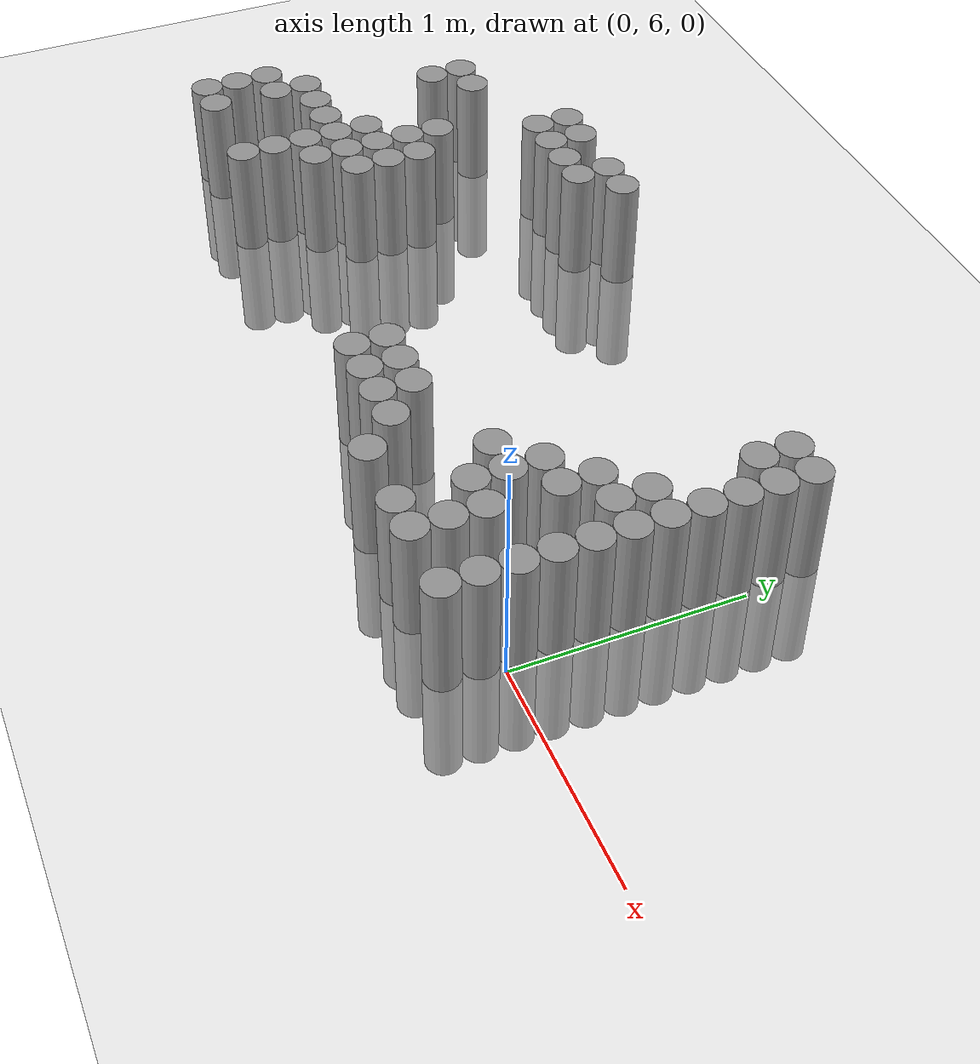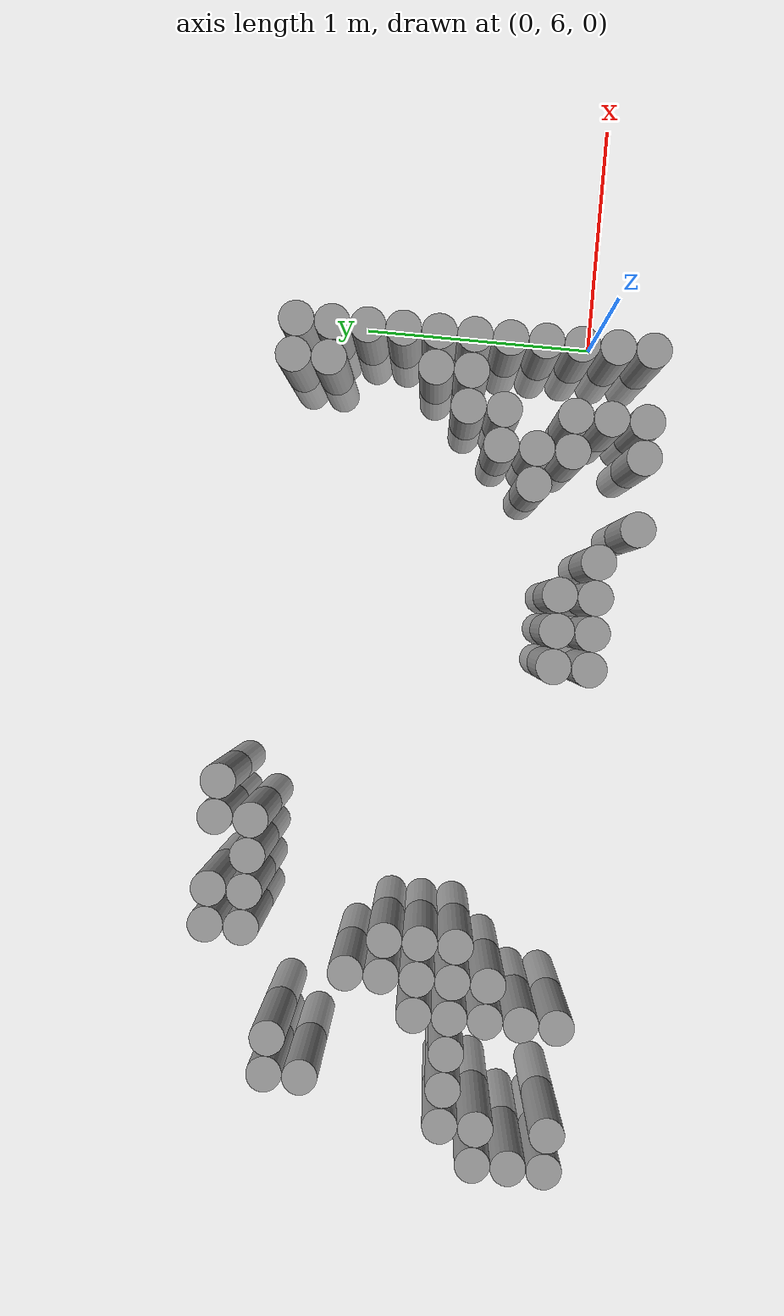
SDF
<sdf version="1.6">
 <world name="default">
  <model name="ground_plane">
   <static>1</static>
   <link name="link">
    <collision name="collision">
     <geometry><plane><normal>0 0 1</normal><size>100 100</size></plane></geometry>
     <surface><friction><ode><mu>100</mu><mu2>50</mu2></ode></friction></surface>
    </collision>
    <visual name="visual">
     <cast_shadows>0</cast_shadows>
     <geometry><plane><normal>0 0 1</normal><size>100 100</size></plane></geometry>
     <material>
      <script><uri>file://media/materials/scripts/gazebo.material</uri><name>Gazebo/Grey</name></script>
     </material>
    </visual>
   </link>
  </model>
  <model name="unit_cylinder_177">
   <pose>-3.525000 5.925000 0.000000 0.000000 0.000000 0.000000</pose>
   <link name="link">
    <inertial>
     <mass>1</mass>
     <inertia><ixx>0.145833</ixx><ixy>0</ixy><ixz>0</ixz><iyy>0.145833</iyy><iyz>0</iyz><izz>0.125</izz></inertia>
    </inertial>
    <collision name="collision">
     <geometry><cylinder><radius>0.075000</radius><length>1</length></cylinder></geometry>
    </collision>
    <visual name="visual">
     <geometry><cylinder><radius>0.075000</radius><length>1</length></cylinder></geometry>
     <material>
      <script><name>Gazebo/Grey</name><uri>file://media/materials/scripts/gazebo.material</uri></script>
     </material>
    </visual>
   </link>
  </model>
  <model name="unit_cylinder_178">
   <pose>-3.525000 6.075000 0.000000 0.000000 0.000000 0.000000</pose>
   <link name="link">
    <inertial>
     <mass>1</mass>
     <inertia><ixx>0.145833</ixx><ixy>0</ixy><ixz>0</ixz><iyy>0.145833</iyy><iyz>0</iyz><izz>0.125</izz></inertia>
    </inertial>
    <collision name="collision">
     <geometry><cylinder><radius>0.075000</radius><length>1</length></cylinder></geometry>
    </collision>
    <visual name="visual">
     <geometry><cylinder><radius>0.075000</radius><length>1</length></cylinder></geometry>
     <material>
      <script><name>Gazebo/Grey</name><uri>file://media/materials/scripts/gazebo.material</uri></script>
     </material>
    </visual>
   </link>
  </model>
  <model name="unit_cylinder_179">
   <pose>-3.525000 6.225000 0.000000 0.000000 0.000000 0.000000</pose>
   <link name="link">
    <inertial>
     <mass>1</mass>
     <inertia><ixx>0.145833</ixx><ixy>0</ixy><ixz>0</ixz><iyy>0.145833</iyy><iyz>0</iyz><izz>0.125</izz></inertia>
    </inertial>
    <collision name="collision">
     <geometry><cylinder><radius>0.075000</radius><length>1</length></cylinder></geometry>
    </collision>
    <visual name="visual">
     <geometry><cylinder><radius>0.075000</radius><length>1</length></cylinder></geometry>
     <material>
      <script><name>Gazebo/Grey</name><uri>file://media/materials/scripts/gazebo.material</uri></script>
     </material>
    </visual>
   </link>
  </model>
  <model name="unit_cylinder_183">
   <pose>-3.375000 5.925000 0.000000 0.000000 0.000000 0.000000</pose>
   <link name="link">
    <inertial>
     <mass>1</mass>
     <inertia><ixx>0.145833</ixx><ixy>0</ixy><ixz>0</ixz><iyy>0.145833</iyy><iyz>0</iyz><izz>0.125</izz></inertia>
    </inertial>
    <collision name="collision">
     <geometry><cylinder><radius>0.075000</radius><length>1</length></cylinder></geometry>
    </collision>
    <visual name="visual">
     <geometry><cylinder><radius>0.075000</radius><length>1</length></cylinder></geometry>
     <material>
      <script><name>Gazebo/Grey</name><uri>file://media/materials/scripts/gazebo.material</uri></script>
     </material>
    </visual>
   </link>
  </model>
  <model name="unit_cylinder_184">
   <pose>-3.375000 6.225000 0.000000 0.000000 0.000000 0.000000</pose>
   <link name="link">
    <inertial>
     <mass>1</mass>
     <inertia><ixx>0.145833</ixx><ixy>0</ixy><ixz>0</ixz><iyy>0.145833</iyy><iyz>0</iyz><izz>0.125</izz></inertia>
    </inertial>
    <collision name="collision">
     <geometry><cylinder><radius>0.075000</radius><length>1</length></cylinder></geometry>
    </collision>
    <visual name="visual">
     <geometry><cylinder><radius>0.075000</radius><length>1</length></cylinder></geometry>
     <material>
      <script><name>Gazebo/Grey</name><uri>file://media/materials/scripts/gazebo.material</uri></script>
     </material>
    </visual>
   </link>
  </model>
  <model name="unit_cylinder_185">
   <pose>-3.375000 6.375000 0.000000 0.000000 0.000000 0.000000</pose>
   <link name="link">
    <inertial>
     <mass>1</mass>
     <inertia><ixx>0.145833</ixx><ixy>0</ixy><ixz>0</ixz><iyy>0.145833</iyy><iyz>0</iyz><izz>0.125</izz></inertia>
    </inertial>
    <collision name="collision">
     <geometry><cylinder><radius>0.075000</radius><length>1</length></cylinder></geometry>
    </collision>
    <visual name="visual">
     <geometry><cylinder><radius>0.075000</radius><length>1</length></cylinder></geometry>
     <material>
      <script><name>Gazebo/Grey</name><uri>file://media/materials/scripts/gazebo.material</uri></script>
     </material>
    </visual>
   </link>
  </model>
  <model name="unit_cylinder_190">
   <pose>-3.225000 6.375000 0.000000 0.000000 0.000000 0.000000</pose>
   <link name="link">
    <inertial>
     <mass>1</mass>
     <inertia><ixx>0.145833</ixx><ixy>0</ixy><ixz>0</ixz><iyy>0.145833</iyy><iyz>0</iyz><izz>0.125</izz></inertia>
    </inertial>
    <collision name="collision">
     <geometry><cylinder><radius>0.075000</radius><length>1</length></cylinder></geometry>
    </collision>
    <visual name="visual">
     <geometry><cylinder><radius>0.075000</radius><length>1</length></cylinder></geometry>
     <material>
      <script><name>Gazebo/Grey</name><uri>file://media/materials/scripts/gazebo.material</uri></script>
     </material>
    </visual>
   </link>
  </model>
  <model name="unit_cylinder_191">
   <pose>-3.225000 6.975000 0.000000 0.000000 0.000000 0.000000</pose>
   <link name="link">
    <inertial>
     <mass>1</mass>
     <inertia><ixx>0.145833</ixx><ixy>0</ixy><ixz>0</ixz><iyy>0.145833</iyy><iyz>0</iyz><izz>0.125</izz></inertia>
    </inertial>
    <collision name="collision">
     <geometry><cylinder><radius>0.075000</radius><length>1</length></cylinder></geometry>
    </collision>
    <visual name="visual">
     <geometry><cylinder><radius>0.075000</radius><length>1</length></cylinder></geometry>
     <material>
      <script><name>Gazebo/Grey</name><uri>file://media/materials/scripts/gazebo.material</uri></script>
     </material>
    </visual>
   </link>
  </model>
  <model name="unit_cylinder_192">
   <pose>-3.225000 7.125000 0.000000 0.000000 0.000000 0.000000</pose>
   <link name="link">
    <inertial>
     <mass>1</mass>
     <inertia><ixx>0.145833</ixx><ixy>0</ixy><ixz>0</ixz><iyy>0.145833</iyy><iyz>0</iyz><izz>0.125</izz></inertia>
    </inertial>
    <collision name="collision">
     <geometry><cylinder><radius>0.075000</radius><length>1</length></cylinder></geometry>
    </collision>
    <visual name="visual">
     <geometry><cylinder><radius>0.075000</radius><length>1</length></cylinder></geometry>
     <material>
      <script><name>Gazebo/Grey</name><uri>file://media/materials/scripts/gazebo.material</uri></script>
     </material>
    </visual>
   </link>
  </model>
  <model name="unit_cylinder_195">
   <pose>-3.075000 6.375000 0.000000 0.000000 0.000000 0.000000</pose>
   <link name="link">
    <inertial>
     <mass>1</mass>
     <inertia><ixx>0.145833</ixx><ixy>0</ixy><ixz>0</ixz><iyy>0.145833</iyy><iyz>0</iyz><izz>0.125</izz></inertia>
    </inertial>
    <collision name="collision">
     <geometry><cylinder><radius>0.075000</radius><length>1</length></cylinder></geometry>
    </collision>
    <visual name="visual">
     <geometry><cylinder><radius>0.075000</radius><length>1</length></cylinder></geometry>
     <material>
      <script><name>Gazebo/Grey</name><uri>file://media/materials/scripts/gazebo.material</uri></script>
     </material>
    </visual>
   </link>
  </model>
  <model name="unit_cylinder_196">
   <pose>-3.075000 7.125000 0.000000 0.000000 0.000000 0.000000</pose>
   <link name="link">
    <inertial>
     <mass>1</mass>
     <inertia><ixx>0.145833</ixx><ixy>0</ixy><ixz>0</ixz><iyy>0.145833</iyy><iyz>0</iyz><izz>0.125</izz></inertia>
    </inertial>
    <collision name="collision">
     <geometry><cylinder><radius>0.075000</radius><length>1</length></cylinder></geometry>
    </collision>
    <visual name="visual">
     <geometry><cylinder><radius>0.075000</radius><length>1</length></cylinder></geometry>
     <material>
      <script><name>Gazebo/Grey</name><uri>file://media/materials/scripts/gazebo.material</uri></script>
     </material>
    </visual>
   </link>
  </model>
  <model name="unit_cylinder_201">
   <pose>-2.925000 5.925000 0.000000 0.000000 0.000000 0.000000</pose>
   <link name="link">
    <inertial>
     <mass>1</mass>
     <inertia><ixx>0.145833</ixx><ixy>0</ixy><ixz>0</ixz><iyy>0.145833</iyy><iyz>0</iyz><izz>0.125</izz></inertia>
    </inertial>
    <collision name="collision">
     <geometry><cylinder><radius>0.075000</radius><length>1</length></cylinder></geometry>
    </collision>
    <visual name="visual">
     <geometry><cylinder><radius>0.075000</radius><length>1</length></cylinder></geometry>
     <material>
      <script><name>Gazebo/Grey</name><uri>file://media/materials/scripts/gazebo.material</uri></script>
     </material>
    </visual>
   </link>
  </model>
  <model name="unit_cylinder_202">
   <pose>-2.925000 6.075000 0.000000 0.000000 0.000000 0.000000</pose>
   <link name="link">
    <inertial>
     <mass>1</mass>
     <inertia><ixx>0.145833</ixx><ixy>0</ixy><ixz>0</ixz><iyy>0.145833</iyy><iyz>0</iyz><izz>0.125</izz></inertia>
    </inertial>
    <collision name="collision">
     <geometry><cylinder><radius>0.075000</radius><length>1</length></cylinder></geometry>
    </collision>
    <visual name="visual">
     <geometry><cylinder><radius>0.075000</radius><length>1</length></cylinder></geometry>
     <material>
      <script><name>Gazebo/Grey</name><uri>file://media/materials/scripts/gazebo.material</uri></script>
     </material>
    </visual>
   </link>
  </model>
  <model name="unit_cylinder_203">
   <pose>-2.925000 6.225000 0.000000 0.000000 0.000000 0.000000</pose>
   <link name="link">
    <inertial>
     <mass>1</mass>
     <inertia><ixx>0.145833</ixx><ixy>0</ixy><ixz>0</ixz><iyy>0.145833</iyy><iyz>0</iyz><izz>0.125</izz></inertia>
    </inertial>
    <collision name="collision">
     <geometry><cylinder><radius>0.075000</radius><length>1</length></cylinder></geometry>
    </collision>
    <visual name="visual">
     <geometry><cylinder><radius>0.075000</radius><length>1</length></cylinder></geometry>
     <material>
      <script><name>Gazebo/Grey</name><uri>file://media/materials/scripts/gazebo.material</uri></script>
     </material>
    </visual>
   </link>
  </model>
  <model name="unit_cylinder_204">
   <pose>-2.925000 6.375000 0.000000 0.000000 0.000000 0.000000</pose>
   <link name="link">
    <inertial>
     <mass>1</mass>
     <inertia><ixx>0.145833</ixx><ixy>0</ixy><ixz>0</ixz><iyy>0.145833</iyy><iyz>0</iyz><izz>0.125</izz></inertia>
    </inertial>
    <collision name="collision">
     <geometry><cylinder><radius>0.075000</radius><length>1</length></cylinder></geometry>
    </collision>
    <visual name="visual">
     <geometry><cylinder><radius>0.075000</radius><length>1</length></cylinder></geometry>
     <material>
      <script><name>Gazebo/Grey</name><uri>file://media/materials/scripts/gazebo.material</uri></script>
     </material>
    </visual>
   </link>
  </model>
  <model name="unit_cylinder_205">
   <pose>-2.925000 6.525000 0.000000 0.000000 0.000000 0.000000</pose>
   <link name="link">
    <inertial>
     <mass>1</mass>
     <inertia><ixx>0.145833</ixx><ixy>0</ixy><ixz>0</ixz><iyy>0.145833</iyy><iyz>0</iyz><izz>0.125</izz></inertia>
    </inertial>
    <collision name="collision">
     <geometry><cylinder><radius>0.075000</radius><length>1</length></cylinder></geometry>
    </collision>
    <visual name="visual">
     <geometry><cylinder><radius>0.075000</radius><length>1</length></cylinder></geometry>
     <material>
      <script><name>Gazebo/Grey</name><uri>file://media/materials/scripts/gazebo.material</uri></script>
     </material>
    </visual>
   </link>
  </model>
  <model name="unit_cylinder_208">
   <pose>-2.775000 6.225000 0.000000 0.000000 0.000000 0.000000</pose>
   <link name="link">
    <inertial>
     <mass>1</mass>
     <inertia><ixx>0.145833</ixx><ixy>0</ixy><ixz>0</ixz><iyy>0.145833</iyy><iyz>0</iyz><izz>0.125</izz></inertia>
    </inertial>
    <collision name="collision">
     <geometry><cylinder><radius>0.075000</radius><length>1</length></cylinder></geometry>
    </collision>
    <visual name="visual">
     <geometry><cylinder><radius>0.075000</radius><length>1</length></cylinder></geometry>
     <material>
      <script><name>Gazebo/Grey</name><uri>file://media/materials/scripts/gazebo.material</uri></script>
     </material>
    </visual>
   </link>
  </model>
  <model name="unit_cylinder_209">
   <pose>-2.775000 6.375000 0.000000 0.000000 0.000000 0.000000</pose>
   <link name="link">
    <inertial>
     <mass>1</mass>
     <inertia><ixx>0.145833</ixx><ixy>0</ixy><ixz>0</ixz><iyy>0.145833</iyy><iyz>0</iyz><izz>0.125</izz></inertia>
    </inertial>
    <collision name="collision">
     <geometry><cylinder><radius>0.075000</radius><length>1</length></cylinder></geometry>
    </collision>
    <visual name="visual">
     <geometry><cylinder><radius>0.075000</radius><length>1</length></cylinder></geometry>
     <material>
      <script><name>Gazebo/Grey</name><uri>file://media/materials/scripts/gazebo.material</uri></script>
     </material>
    </visual>
   </link>
  </model>
  <model name="unit_cylinder_210">
   <pose>-2.775000 6.525000 0.000000 0.000000 0.000000 0.000000</pose>
   <link name="link">
    <inertial>
     <mass>1</mass>
     <inertia><ixx>0.145833</ixx><ixy>0</ixy><ixz>0</ixz><iyy>0.145833</iyy><iyz>0</iyz><izz>0.125</izz></inertia>
    </inertial>
    <collision name="collision">
     <geometry><cylinder><radius>0.075000</radius><length>1</length></cylinder></geometry>
    </collision>
    <visual name="visual">
     <geometry><cylinder><radius>0.075000</radius><length>1</length></cylinder></geometry>
     <material>
      <script><name>Gazebo/Grey</name><uri>file://media/materials/scripts/gazebo.material</uri></script>
     </material>
    </visual>
   </link>
  </model>
  <model name="unit_cylinder_211">
   <pose>-2.775000 6.675000 0.000000 0.000000 0.000000 0.000000</pose>
   <link name="link">
    <inertial>
     <mass>1</mass>
     <inertia><ixx>0.145833</ixx><ixy>0</ixy><ixz>0</ixz><iyy>0.145833</iyy><iyz>0</iyz><izz>0.125</izz></inertia>
    </inertial>
    <collision name="collision">
     <geometry><cylinder><radius>0.075000</radius><length>1</length></cylinder></geometry>
    </collision>
    <visual name="visual">
     <geometry><cylinder><radius>0.075000</radius><length>1</length></cylinder></geometry>
     <material>
      <script><name>Gazebo/Grey</name><uri>file://media/materials/scripts/gazebo.material</uri></script>
     </material>
    </visual>
   </link>
  </model>
  <model name="unit_cylinder_212">
   <pose>-2.775000 6.825000 0.000000 0.000000 0.000000 0.000000</pose>
   <link name="link">
    <inertial>
     <mass>1</mass>
     <inertia><ixx>0.145833</ixx><ixy>0</ixy><ixz>0</ixz><iyy>0.145833</iyy><iyz>0</iyz><izz>0.125</izz></inertia>
    </inertial>
    <collision name="collision">
     <geometry><cylinder><radius>0.075000</radius><length>1</length></cylinder></geometry>
    </collision>
    <visual name="visual">
     <geometry><cylinder><radius>0.075000</radius><length>1</length></cylinder></geometry>
     <material>
      <script><name>Gazebo/Grey</name><uri>file://media/materials/scripts/gazebo.material</uri></script>
     </material>
    </visual>
   </link>
  </model>
  <model name="unit_cylinder_214">
   <pose>-2.625000 6.375000 0.000000 0.000000 0.000000 0.000000</pose>
   <link name="link">
    <inertial>
     <mass>1</mass>
     <inertia><ixx>0.145833</ixx><ixy>0</ixy><ixz>0</ixz><iyy>0.145833</iyy><iyz>0</iyz><izz>0.125</izz></inertia>
    </inertial>
    <collision name="collision">
     <geometry><cylinder><radius>0.075000</radius><length>1</length></cylinder></geometry>
    </collision>
    <visual name="visual">
     <geometry><cylinder><radius>0.075000</radius><length>1</length></cylinder></geometry>
     <material>
      <script><name>Gazebo/Grey</name><uri>file://media/materials/scripts/gazebo.material</uri></script>
     </material>
    </visual>
   </link>
  </model>
  <model name="unit_cylinder_215">
   <pose>-2.625000 6.525000 0.000000 0.000000 0.000000 0.000000</pose>
   <link name="link">
    <inertial>
     <mass>1</mass>
     <inertia><ixx>0.145833</ixx><ixy>0</ixy><ixz>0</ixz><iyy>0.145833</iyy><iyz>0</iyz><izz>0.125</izz></inertia>
    </inertial>
    <collision name="collision">
     <geometry><cylinder><radius>0.075000</radius><length>1</length></cylinder></geometry>
    </collision>
    <visual name="visual">
     <geometry><cylinder><radius>0.075000</radius><length>1</length></cylinder></geometry>
     <material>
      <script><name>Gazebo/Grey</name><uri>file://media/materials/scripts/gazebo.material</uri></script>
     </material>
    </visual>
   </link>
  </model>
  <model name="unit_cylinder_216">
   <pose>-2.625000 6.675000 0.000000 0.000000 0.000000 0.000000</pose>
   <link name="link">
    <inertial>
     <mass>1</mass>
     <inertia><ixx>0.145833</ixx><ixy>0</ixy><ixz>0</ixz><iyy>0.145833</iyy><iyz>0</iyz><izz>0.125</izz></inertia>
    </inertial>
    <collision name="collision">
     <geometry><cylinder><radius>0.075000</radius><length>1</length></cylinder></geometry>
    </collision>
    <visual name="visual">
     <geometry><cylinder><radius>0.075000</radius><length>1</length></cylinder></geometry>
     <material>
      <script><name>Gazebo/Grey</name><uri>file://media/materials/scripts/gazebo.material</uri></script>
     </material>
    </visual>
   </link>
  </model>
  <model name="unit_cylinder_217">
   <pose>-2.625000 7.275000 0.000000 0.000000 0.000000 0.000000</pose>
   <link name="link">
    <inertial>
     <mass>1</mass>
     <inertia><ixx>0.145833</ixx><ixy>0</ixy><ixz>0</ixz><iyy>0.145833</iyy><iyz>0</iyz><izz>0.125</izz></inertia>
    </inertial>
    <collision name="collision">
     <geometry><cylinder><radius>0.075000</radius><length>1</length></cylinder></geometry>
    </collision>
    <visual name="visual">
     <geometry><cylinder><radius>0.075000</radius><length>1</length></cylinder></geometry>
     <material>
      <script><name>Gazebo/Grey</name><uri>file://media/materials/scripts/gazebo.material</uri></script>
     </material>
    </visual>
   </link>
  </model>
  <model name="unit_cylinder_218">
   <pose>-2.625000 7.425000 0.000000 0.000000 0.000000 0.000000</pose>
   <link name="link">
    <inertial>
     <mass>1</mass>
     <inertia><ixx>0.145833</ixx><ixy>0</ixy><ixz>0</ixz><iyy>0.145833</iyy><iyz>0</iyz><izz>0.125</izz></inertia>
    </inertial>
    <collision name="collision">
     <geometry><cylinder><radius>0.075000</radius><length>1</length></cylinder></geometry>
    </collision>
    <visual name="visual">
     <geometry><cylinder><radius>0.075000</radius><length>1</length></cylinder></geometry>
     <material>
      <script><name>Gazebo/Grey</name><uri>file://media/materials/scripts/gazebo.material</uri></script>
     </material>
    </visual>
   </link>
  </model>
  <model name="unit_cylinder_222">
   <pose>-2.475000 7.275000 0.000000 0.000000 0.000000 0.000000</pose>
   <link name="link">
    <inertial>
     <mass>1</mass>
     <inertia><ixx>0.145833</ixx><ixy>0</ixy><ixz>0</ixz><iyy>0.145833</iyy><iyz>0</iyz><izz>0.125</izz></inertia>
    </inertial>
    <collision name="collision">
     <geometry><cylinder><radius>0.075000</radius><length>1</length></cylinder></geometry>
    </collision>
    <visual name="visual">
     <geometry><cylinder><radius>0.075000</radius><length>1</length></cylinder></geometry>
     <material>
      <script><name>Gazebo/Grey</name><uri>file://media/materials/scripts/gazebo.material</uri></script>
     </material>
    </visual>
   </link>
  </model>
  <model name="unit_cylinder_223">
   <pose>-2.475000 7.425000 0.000000 0.000000 0.000000 0.000000</pose>
   <link name="link">
    <inertial>
     <mass>1</mass>
     <inertia><ixx>0.145833</ixx><ixy>0</ixy><ixz>0</ixz><iyy>0.145833</iyy><iyz>0</iyz><izz>0.125</izz></inertia>
    </inertial>
    <collision name="collision">
     <geometry><cylinder><radius>0.075000</radius><length>1</length></cylinder></geometry>
    </collision>
    <visual name="visual">
     <geometry><cylinder><radius>0.075000</radius><length>1</length></cylinder></geometry>
     <material>
      <script><name>Gazebo/Grey</name><uri>file://media/materials/scripts/gazebo.material</uri></script>
     </material>
    </visual>
   </link>
  </model>
  <model name="unit_cylinder_229">
   <pose>-2.325000 7.275000 0.000000 0.000000 0.000000 0.000000</pose>
   <link name="link">
    <inertial>
     <mass>1</mass>
     <inertia><ixx>0.145833</ixx><ixy>0</ixy><ixz>0</ixz><iyy>0.145833</iyy><iyz>0</iyz><izz>0.125</izz></inertia>
    </inertial>
    <collision name="collision">
     <geometry><cylinder><radius>0.075000</radius><length>1</length></cylinder></geometry>
    </collision>
    <visual name="visual">
     <geometry><cylinder><radius>0.075000</radius><length>1</length></cylinder></geometry>
     <material>
      <script><name>Gazebo/Grey</name><uri>file://media/materials/scripts/gazebo.material</uri></script>
     </material>
    </visual>
   </link>
  </model>
  <model name="unit_cylinder_236">
   <pose>-2.175000 7.275000 0.000000 0.000000 0.000000 0.000000</pose>
   <link name="link">
    <inertial>
     <mass>1</mass>
     <inertia><ixx>0.145833</ixx><ixy>0</ixy><ixz>0</ixz><iyy>0.145833</iyy><iyz>0</iyz><izz>0.125</izz></inertia>
    </inertial>
    <collision name="collision">
     <geometry><cylinder><radius>0.075000</radius><length>1</length></cylinder></geometry>
    </collision>
    <visual name="visual">
     <geometry><cylinder><radius>0.075000</radius><length>1</length></cylinder></geometry>
     <material>
      <script><name>Gazebo/Grey</name><uri>file://media/materials/scripts/gazebo.material</uri></script>
     </material>
    </visual>
   </link>
  </model>
  <model name="unit_cylinder_237">
   <pose>-2.175000 7.425000 0.000000 0.000000 0.000000 0.000000</pose>
   <link name="link">
    <inertial>
     <mass>1</mass>
     <inertia><ixx>0.145833</ixx><ixy>0</ixy><ixz>0</ixz><iyy>0.145833</iyy><iyz>0</iyz><izz>0.125</izz></inertia>
    </inertial>
    <collision name="collision">
     <geometry><cylinder><radius>0.075000</radius><length>1</length></cylinder></geometry>
    </collision>
    <visual name="visual">
     <geometry><cylinder><radius>0.075000</radius><length>1</length></cylinder></geometry>
     <material>
      <script><name>Gazebo/Grey</name><uri>file://media/materials/scripts/gazebo.material</uri></script>
     </material>
    </visual>
   </link>
  </model>
  <model name="unit_cylinder_242">
   <pose>-2.025000 7.425000 0.000000 0.000000 0.000000 0.000000</pose>
   <link name="link">
    <inertial>
     <mass>1</mass>
     <inertia><ixx>0.145833</ixx><ixy>0</ixy><ixz>0</ixz><iyy>0.145833</iyy><iyz>0</iyz><izz>0.125</izz></inertia>
    </inertial>
    <collision name="collision">
     <geometry><cylinder><radius>0.075000</radius><length>1</length></cylinder></geometry>
    </collision>
    <visual name="visual">
     <geometry><cylinder><radius>0.075000</radius><length>1</length></cylinder></geometry>
     <material>
      <script><name>Gazebo/Grey</name><uri>file://media/materials/scripts/gazebo.material</uri></script>
     </material>
    </visual>
   </link>
  </model>
  <model name="unit_cylinder_247">
   <pose>-1.425000 5.925000 0.000000 0.000000 0.000000 0.000000</pose>
   <link name="link">
    <inertial>
     <mass>1</mass>
     <inertia><ixx>0.145833</ixx><ixy>0</ixy><ixz>0</ixz><iyy>0.145833</iyy><iyz>0</iyz><izz>0.125</izz></inertia>
    </inertial>
    <collision name="collision">
     <geometry><cylinder><radius>0.075000</radius><length>1</length></cylinder></geometry>
    </collision>
    <visual name="visual">
     <geometry><cylinder><radius>0.075000</radius><length>1</length></cylinder></geometry>
     <material>
      <script><name>Gazebo/Grey</name><uri>file://media/materials/scripts/gazebo.material</uri></script>
     </material>
    </visual>
   </link>
  </model>
  <model name="unit_cylinder_248">
   <pose>-1.425000 6.075000 0.000000 0.000000 0.000000 0.000000</pose>
   <link name="link">
    <inertial>
     <mass>1</mass>
     <inertia><ixx>0.145833</ixx><ixy>0</ixy><ixz>0</ixz><iyy>0.145833</iyy><iyz>0</iyz><izz>0.125</izz></inertia>
    </inertial>
    <collision name="collision">
     <geometry><cylinder><radius>0.075000</radius><length>1</length></cylinder></geometry>
    </collision>
    <visual name="visual">
     <geometry><cylinder><radius>0.075000</radius><length>1</length></cylinder></geometry>
     <material>
      <script><name>Gazebo/Grey</name><uri>file://media/materials/scripts/gazebo.material</uri></script>
     </material>
    </visual>
   </link>
  </model>
  <model name="unit_cylinder_249">
   <pose>-1.275000 5.925000 0.000000 0.000000 0.000000 0.000000</pose>
   <link name="link">
    <inertial>
     <mass>1</mass>
     <inertia><ixx>0.145833</ixx><ixy>0</ixy><ixz>0</ixz><iyy>0.145833</iyy><iyz>0</iyz><izz>0.125</izz></inertia>
    </inertial>
    <collision name="collision">
     <geometry><cylinder><radius>0.075000</radius><length>1</length></cylinder></geometry>
    </collision>
    <visual name="visual">
     <geometry><cylinder><radius>0.075000</radius><length>1</length></cylinder></geometry>
     <material>
      <script><name>Gazebo/Grey</name><uri>file://media/materials/scripts/gazebo.material</uri></script>
     </material>
    </visual>
   </link>
  </model>
  <model name="unit_cylinder_250">
   <pose>-1.275000 6.075000 0.000000 0.000000 0.000000 0.000000</pose>
   <link name="link">
    <inertial>
     <mass>1</mass>
     <inertia><ixx>0.145833</ixx><ixy>0</ixy><ixz>0</ixz><iyy>0.145833</iyy><iyz>0</iyz><izz>0.125</izz></inertia>
    </inertial>
    <collision name="collision">
     <geometry><cylinder><radius>0.075000</radius><length>1</length></cylinder></geometry>
    </collision>
    <visual name="visual">
     <geometry><cylinder><radius>0.075000</radius><length>1</length></cylinder></geometry>
     <material>
      <script><name>Gazebo/Grey</name><uri>file://media/materials/scripts/gazebo.material</uri></script>
     </material>
    </visual>
   </link>
  </model>
  <model name="unit_cylinder_251">
   <pose>-1.125000 5.925000 0.000000 0.000000 0.000000 0.000000</pose>
   <link name="link">
    <inertial>
     <mass>1</mass>
     <inertia><ixx>0.145833</ixx><ixy>0</ixy><ixz>0</ixz><iyy>0.145833</iyy><iyz>0</iyz><izz>0.125</izz></inertia>
    </inertial>
    <collision name="collision">
     <geometry><cylinder><radius>0.075000</radius><length>1</length></cylinder></geometry>
    </collision>
    <visual name="visual">
     <geometry><cylinder><radius>0.075000</radius><length>1</length></cylinder></geometry>
     <material>
      <script><name>Gazebo/Grey</name><uri>file://media/materials/scripts/gazebo.material</uri></script>
     </material>
    </visual>
   </link>
  </model>
  <model name="unit_cylinder_252">
   <pose>-1.125000 6.075000 0.000000 0.000000 0.000000 0.000000</pose>
   <link name="link">
    <inertial>
     <mass>1</mass>
     <inertia><ixx>0.145833</ixx><ixy>0</ixy><ixz>0</ixz><iyy>0.145833</iyy><iyz>0</iyz><izz>0.125</izz></inertia>
    </inertial>
    <collision name="collision">
     <geometry><cylinder><radius>0.075000</radius><length>1</length></cylinder></geometry>
    </collision>
    <visual name="visual">
     <geometry><cylinder><radius>0.075000</radius><length>1</length></cylinder></geometry>
     <material>
      <script><name>Gazebo/Grey</name><uri>file://media/materials/scripts/gazebo.material</uri></script>
     </material>
    </visual>
   </link>
  </model>
  <model name="unit_cylinder_254">
   <pose>-0.975000 5.925000 0.000000 0.000000 0.000000 0.000000</pose>
   <link name="link">
    <inertial>
     <mass>1</mass>
     <inertia><ixx>0.145833</ixx><ixy>0</ixy><ixz>0</ixz><iyy>0.145833</iyy><iyz>0</iyz><izz>0.125</izz></inertia>
    </inertial>
    <collision name="collision">
     <geometry><cylinder><radius>0.075000</radius><length>1</length></cylinder></geometry>
    </collision>
    <visual name="visual">
     <geometry><cylinder><radius>0.075000</radius><length>1</length></cylinder></geometry>
     <material>
      <script><name>Gazebo/Grey</name><uri>file://media/materials/scripts/gazebo.material</uri></script>
     </material>
    </visual>
   </link>
  </model>
  <model name="unit_cylinder_256">
   <pose>-0.825000 5.775000 0.000000 0.000000 0.000000 0.000000</pose>
   <link name="link">
    <inertial>
     <mass>1</mass>
     <inertia><ixx>0.145833</ixx><ixy>0</ixy><ixz>0</ixz><iyy>0.145833</iyy><iyz>0</iyz><izz>0.125</izz></inertia>
    </inertial>
    <collision name="collision">
     <geometry><cylinder><radius>0.075000</radius><length>1</length></cylinder></geometry>
    </collision>
    <visual name="visual">
     <geometry><cylinder><radius>0.075000</radius><length>1</length></cylinder></geometry>
     <material>
      <script><name>Gazebo/Grey</name><uri>file://media/materials/scripts/gazebo.material</uri></script>
     </material>
    </visual>
   </link>
  </model>
  <model name="unit_cylinder_258">
   <pose>-0.675000 6.225000 0.000000 0.000000 0.000000 0.000000</pose>
   <link name="link">
    <inertial>
     <mass>1</mass>
     <inertia><ixx>0.145833</ixx><ixy>0</ixy><ixz>0</ixz><iyy>0.145833</iyy><iyz>0</iyz><izz>0.125</izz></inertia>
    </inertial>
    <collision name="collision">
     <geometry><cylinder><radius>0.075000</radius><length>1</length></cylinder></geometry>
    </collision>
    <visual name="visual">
     <geometry><cylinder><radius>0.075000</radius><length>1</length></cylinder></geometry>
     <material>
      <script><name>Gazebo/Grey</name><uri>file://media/materials/scripts/gazebo.material</uri></script>
     </material>
    </visual>
   </link>
  </model>
  <model name="unit_cylinder_263">
   <pose>-0.525000 5.775000 0.000000 0.000000 0.000000 0.000000</pose>
   <link name="link">
    <inertial>
     <mass>1</mass>
     <inertia><ixx>0.145833</ixx><ixy>0</ixy><ixz>0</ixz><iyy>0.145833</iyy><iyz>0</iyz><izz>0.125</izz></inertia>
    </inertial>
    <collision name="collision">
     <geometry><cylinder><radius>0.075000</radius><length>1</length></cylinder></geometry>
    </collision>
    <visual name="visual">
     <geometry><cylinder><radius>0.075000</radius><length>1</length></cylinder></geometry>
     <material>
      <script><name>Gazebo/Grey</name><uri>file://media/materials/scripts/gazebo.material</uri></script>
     </material>
    </visual>
   </link>
  </model>
  <model name="unit_cylinder_264">
   <pose>-0.525000 6.075000 0.000000 0.000000 0.000000 0.000000</pose>
   <link name="link">
    <inertial>
     <mass>1</mass>
     <inertia><ixx>0.145833</ixx><ixy>0</ixy><ixz>0</ixz><iyy>0.145833</iyy><iyz>0</iyz><izz>0.125</izz></inertia>
    </inertial>
    <collision name="collision">
     <geometry><cylinder><radius>0.075000</radius><length>1</length></cylinder></geometry>
    </collision>
    <visual name="visual">
     <geometry><cylinder><radius>0.075000</radius><length>1</length></cylinder></geometry>
     <material>
      <script><name>Gazebo/Grey</name><uri>file://media/materials/scripts/gazebo.material</uri></script>
     </material>
    </visual>
   </link>
  </model>
  <model name="unit_cylinder_265">
   <pose>-0.525000 6.225000 0.000000 0.000000 0.000000 0.000000</pose>
   <link name="link">
    <inertial>
     <mass>1</mass>
     <inertia><ixx>0.145833</ixx><ixy>0</ixy><ixz>0</ixz><iyy>0.145833</iyy><iyz>0</iyz><izz>0.125</izz></inertia>
    </inertial>
    <collision name="collision">
     <geometry><cylinder><radius>0.075000</radius><length>1</length></cylinder></geometry>
    </collision>
    <visual name="visual">
     <geometry><cylinder><radius>0.075000</radius><length>1</length></cylinder></geometry>
     <material>
      <script><name>Gazebo/Grey</name><uri>file://media/materials/scripts/gazebo.material</uri></script>
     </material>
    </visual>
   </link>
  </model>
  <model name="unit_cylinder_266">
   <pose>-0.525000 6.375000 0.000000 0.000000 0.000000 0.000000</pose>
   <link name="link">
    <inertial>
     <mass>1</mass>
     <inertia><ixx>0.145833</ixx><ixy>0</ixy><ixz>0</ixz><iyy>0.145833</iyy><iyz>0</iyz><izz>0.125</izz></inertia>
    </inertial>
    <collision name="collision">
     <geometry><cylinder><radius>0.075000</radius><length>1</length></cylinder></geometry>
    </collision>
    <visual name="visual">
     <geometry><cylinder><radius>0.075000</radius><length>1</length></cylinder></geometry>
     <material>
      <script><name>Gazebo/Grey</name><uri>file://media/materials/scripts/gazebo.material</uri></script>
     </material>
    </visual>
   </link>
  </model>
  <model name="unit_cylinder_274">
   <pose>-0.375000 5.775000 0.000000 0.000000 0.000000 0.000000</pose>
   <link name="link">
    <inertial>
     <mass>1</mass>
     <inertia><ixx>0.145833</ixx><ixy>0</ixy><ixz>0</ixz><iyy>0.145833</iyy><iyz>0</iyz><izz>0.125</izz></inertia>
    </inertial>
    <collision name="collision">
     <geometry><cylinder><radius>0.075000</radius><length>1</length></cylinder></geometry>
    </collision>
    <visual name="visual">
     <geometry><cylinder><radius>0.075000</radius><length>1</length></cylinder></geometry>
     <material>
      <script><name>Gazebo/Grey</name><uri>file://media/materials/scripts/gazebo.material</uri></script>
     </material>
    </visual>
   </link>
  </model>
  <model name="unit_cylinder_275">
   <pose>-0.375000 5.925000 0.000000 0.000000 0.000000 0.000000</pose>
   <link name="link">
    <inertial>
     <mass>1</mass>
     <inertia><ixx>0.145833</ixx><ixy>0</ixy><ixz>0</ixz><iyy>0.145833</iyy><iyz>0</iyz><izz>0.125</izz></inertia>
    </inertial>
    <collision name="collision">
     <geometry><cylinder><radius>0.075000</radius><length>1</length></cylinder></geometry>
    </collision>
    <visual name="visual">
     <geometry><cylinder><radius>0.075000</radius><length>1</length></cylinder></geometry>
     <material>
      <script><name>Gazebo/Grey</name><uri>file://media/materials/scripts/gazebo.material</uri></script>
     </material>
    </visual>
   </link>
  </model>
  <model name="unit_cylinder_276">
   <pose>-0.375000 6.075000 0.000000 0.000000 0.000000 0.000000</pose>
   <link name="link">
    <inertial>
     <mass>1</mass>
     <inertia><ixx>0.145833</ixx><ixy>0</ixy><ixz>0</ixz><iyy>0.145833</iyy><iyz>0</iyz><izz>0.125</izz></inertia>
    </inertial>
    <collision name="collision">
     <geometry><cylinder><radius>0.075000</radius><length>1</length></cylinder></geometry>
    </collision>
    <visual name="visual">
     <geometry><cylinder><radius>0.075000</radius><length>1</length></cylinder></geometry>
     <material>
      <script><name>Gazebo/Grey</name><uri>file://media/materials/scripts/gazebo.material</uri></script>
     </material>
    </visual>
   </link>
  </model>
  <model name="unit_cylinder_277">
   <pose>-0.375000 6.375000 0.000000 0.000000 0.000000 0.000000</pose>
   <link name="link">
    <inertial>
     <mass>1</mass>
     <inertia><ixx>0.145833</ixx><ixy>0</ixy><ixz>0</ixz><iyy>0.145833</iyy><iyz>0</iyz><izz>0.125</izz></inertia>
    </inertial>
    <collision name="collision">
     <geometry><cylinder><radius>0.075000</radius><length>1</length></cylinder></geometry>
    </collision>
    <visual name="visual">
     <geometry><cylinder><radius>0.075000</radius><length>1</length></cylinder></geometry>
     <material>
      <script><name>Gazebo/Grey</name><uri>file://media/materials/scripts/gazebo.material</uri></script>
     </material>
    </visual>
   </link>
  </model>
  <model name="unit_cylinder_278">
   <pose>-0.375000 6.525000 0.000000 0.000000 0.000000 0.000000</pose>
   <link name="link">
    <inertial>
     <mass>1</mass>
     <inertia><ixx>0.145833</ixx><ixy>0</ixy><ixz>0</ixz><iyy>0.145833</iyy><iyz>0</iyz><izz>0.125</izz></inertia>
    </inertial>
    <collision name="collision">
     <geometry><cylinder><radius>0.075000</radius><length>1</length></cylinder></geometry>
    </collision>
    <visual name="visual">
     <geometry><cylinder><radius>0.075000</radius><length>1</length></cylinder></geometry>
     <material>
      <script><name>Gazebo/Grey</name><uri>file://media/materials/scripts/gazebo.material</uri></script>
     </material>
    </visual>
   </link>
  </model>
  <model name="unit_cylinder_288">
   <pose>-0.225000 6.525000 0.000000 0.000000 0.000000 0.000000</pose>
   <link name="link">
    <inertial>
     <mass>1</mass>
     <inertia><ixx>0.145833</ixx><ixy>0</ixy><ixz>0</ixz><iyy>0.145833</iyy><iyz>0</iyz><izz>0.125</izz></inertia>
    </inertial>
    <collision name="collision">
     <geometry><cylinder><radius>0.075000</radius><length>1</length></cylinder></geometry>
    </collision>
    <visual name="visual">
     <geometry><cylinder><radius>0.075000</radius><length>1</length></cylinder></geometry>
     <material>
      <script><name>Gazebo/Grey</name><uri>file://media/materials/scripts/gazebo.material</uri></script>
     </material>
    </visual>
   </link>
  </model>
  <model name="unit_cylinder_289">
   <pose>-0.225000 6.675000 0.000000 0.000000 0.000000 0.000000</pose>
   <link name="link">
    <inertial>
     <mass>1</mass>
     <inertia><ixx>0.145833</ixx><ixy>0</ixy><ixz>0</ixz><iyy>0.145833</iyy><iyz>0</iyz><izz>0.125</izz></inertia>
    </inertial>
    <collision name="collision">
     <geometry><cylinder><radius>0.075000</radius><length>1</length></cylinder></geometry>
    </collision>
    <visual name="visual">
     <geometry><cylinder><radius>0.075000</radius><length>1</length></cylinder></geometry>
     <material>
      <script><name>Gazebo/Grey</name><uri>file://media/materials/scripts/gazebo.material</uri></script>
     </material>
    </visual>
   </link>
  </model>
  <model name="unit_cylinder_290">
   <pose>-0.225000 7.125000 0.000000 0.000000 0.000000 0.000000</pose>
   <link name="link">
    <inertial>
     <mass>1</mass>
     <inertia><ixx>0.145833</ixx><ixy>0</ixy><ixz>0</ixz><iyy>0.145833</iyy><iyz>0</iyz><izz>0.125</izz></inertia>
    </inertial>
    <collision name="collision">
     <geometry><cylinder><radius>0.075000</radius><length>1</length></cylinder></geometry>
    </collision>
    <visual name="visual">
     <geometry><cylinder><radius>0.075000</radius><length>1</length></cylinder></geometry>
     <material>
      <script><name>Gazebo/Grey</name><uri>file://media/materials/scripts/gazebo.material</uri></script>
     </material>
    </visual>
   </link>
  </model>
  <model name="unit_cylinder_291">
   <pose>-0.225000 7.275000 0.000000 0.000000 0.000000 0.000000</pose>
   <link name="link">
    <inertial>
     <mass>1</mass>
     <inertia><ixx>0.145833</ixx><ixy>0</ixy><ixz>0</ixz><iyy>0.145833</iyy><iyz>0</iyz><izz>0.125</izz></inertia>
    </inertial>
    <collision name="collision">
     <geometry><cylinder><radius>0.075000</radius><length>1</length></cylinder></geometry>
    </collision>
    <visual name="visual">
     <geometry><cylinder><radius>0.075000</radius><length>1</length></cylinder></geometry>
     <material>
      <script><name>Gazebo/Grey</name><uri>file://media/materials/scripts/gazebo.material</uri></script>
     </material>
    </visual>
   </link>
  </model>
  <model name="unit_cylinder_303">
   <pose>-0.075000 5.775000 0.000000 0.000000 0.000000 0.000000</pose>
   <link name="link">
    <inertial>
     <mass>1</mass>
     <inertia><ixx>0.145833</ixx><ixy>0</ixy><ixz>0</ixz><iyy>0.145833</iyy><iyz>0</iyz><izz>0.125</izz></inertia>
    </inertial>
    <collision name="collision">
     <geometry><cylinder><radius>0.075000</radius><length>1</length></cylinder></geometry>
    </collision>
    <visual name="visual">
     <geometry><cylinder><radius>0.075000</radius><length>1</length></cylinder></geometry>
     <material>
      <script><name>Gazebo/Grey</name><uri>file://media/materials/scripts/gazebo.material</uri></script>
     </material>
    </visual>
   </link>
  </model>
  <model name="unit_cylinder_304">
   <pose>-0.075000 5.925000 0.000000 0.000000 0.000000 0.000000</pose>
   <link name="link">
    <inertial>
     <mass>1</mass>
     <inertia><ixx>0.145833</ixx><ixy>0</ixy><ixz>0</ixz><iyy>0.145833</iyy><iyz>0</iyz><izz>0.125</izz></inertia>
    </inertial>
    <collision name="collision">
     <geometry><cylinder><radius>0.075000</radius><length>1</length></cylinder></geometry>
    </collision>
    <visual name="visual">
     <geometry><cylinder><radius>0.075000</radius><length>1</length></cylinder></geometry>
     <material>
      <script><name>Gazebo/Grey</name><uri>file://media/materials/scripts/gazebo.material</uri></script>
     </material>
    </visual>
   </link>
  </model>
  <model name="unit_cylinder_305">
   <pose>-0.075000 6.075000 0.000000 0.000000 0.000000 0.000000</pose>
   <link name="link">
    <inertial>
     <mass>1</mass>
     <inertia><ixx>0.145833</ixx><ixy>0</ixy><ixz>0</ixz><iyy>0.145833</iyy><iyz>0</iyz><izz>0.125</izz></inertia>
    </inertial>
    <collision name="collision">
     <geometry><cylinder><radius>0.075000</radius><length>1</length></cylinder></geometry>
    </collision>
    <visual name="visual">
     <geometry><cylinder><radius>0.075000</radius><length>1</length></cylinder></geometry>
     <material>
      <script><name>Gazebo/Grey</name><uri>file://media/materials/scripts/gazebo.material</uri></script>
     </material>
    </visual>
   </link>
  </model>
  <model name="unit_cylinder_306">
   <pose>-0.075000 6.225000 0.000000 0.000000 0.000000 0.000000</pose>
   <link name="link">
    <inertial>
     <mass>1</mass>
     <inertia><ixx>0.145833</ixx><ixy>0</ixy><ixz>0</ixz><iyy>0.145833</iyy><iyz>0</iyz><izz>0.125</izz></inertia>
    </inertial>
    <collision name="collision">
     <geometry><cylinder><radius>0.075000</radius><length>1</length></cylinder></geometry>
    </collision>
    <visual name="visual">
     <geometry><cylinder><radius>0.075000</radius><length>1</length></cylinder></geometry>
     <material>
      <script><name>Gazebo/Grey</name><uri>file://media/materials/scripts/gazebo.material</uri></script>
     </material>
    </visual>
   </link>
  </model>
  <model name="unit_cylinder_307">
   <pose>-0.075000 6.375000 0.000000 0.000000 0.000000 0.000000</pose>
   <link name="link">
    <inertial>
     <mass>1</mass>
     <inertia><ixx>0.145833</ixx><ixy>0</ixy><ixz>0</ixz><iyy>0.145833</iyy><iyz>0</iyz><izz>0.125</izz></inertia>
    </inertial>
    <collision name="collision">
     <geometry><cylinder><radius>0.075000</radius><length>1</length></cylinder></geometry>
    </collision>
    <visual name="visual">
     <geometry><cylinder><radius>0.075000</radius><length>1</length></cylinder></geometry>
     <material>
      <script><name>Gazebo/Grey</name><uri>file://media/materials/scripts/gazebo.material</uri></script>
     </material>
    </visual>
   </link>
  </model>
  <model name="unit_cylinder_308">
   <pose>-0.075000 6.525000 0.000000 0.000000 0.000000 0.000000</pose>
   <link name="link">
    <inertial>
     <mass>1</mass>
     <inertia><ixx>0.145833</ixx><ixy>0</ixy><ixz>0</ixz><iyy>0.145833</iyy><iyz>0</iyz><izz>0.125</izz></inertia>
    </inertial>
    <collision name="collision">
     <geometry><cylinder><radius>0.075000</radius><length>1</length></cylinder></geometry>
    </collision>
    <visual name="visual">
     <geometry><cylinder><radius>0.075000</radius><length>1</length></cylinder></geometry>
     <material>
      <script><name>Gazebo/Grey</name><uri>file://media/materials/scripts/gazebo.material</uri></script>
     </material>
    </visual>
   </link>
  </model>
  <model name="unit_cylinder_309">
   <pose>-0.075000 6.675000 0.000000 0.000000 0.000000 0.000000</pose>
   <link name="link">
    <inertial>
     <mass>1</mass>
     <inertia><ixx>0.145833</ixx><ixy>0</ixy><ixz>0</ixz><iyy>0.145833</iyy><iyz>0</iyz><izz>0.125</izz></inertia>
    </inertial>
    <collision name="collision">
     <geometry><cylinder><radius>0.075000</radius><length>1</length></cylinder></geometry>
    </collision>
    <visual name="visual">
     <geometry><cylinder><radius>0.075000</radius><length>1</length></cylinder></geometry>
     <material>
      <script><name>Gazebo/Grey</name><uri>file://media/materials/scripts/gazebo.material</uri></script>
     </material>
    </visual>
   </link>
  </model>
  <model name="unit_cylinder_310">
   <pose>-0.075000 6.825000 0.000000 0.000000 0.000000 0.000000</pose>
   <link name="link">
    <inertial>
     <mass>1</mass>
     <inertia><ixx>0.145833</ixx><ixy>0</ixy><ixz>0</ixz><iyy>0.145833</iyy><iyz>0</iyz><izz>0.125</izz></inertia>
    </inertial>
    <collision name="collision">
     <geometry><cylinder><radius>0.075000</radius><length>1</length></cylinder></geometry>
    </collision>
    <visual name="visual">
     <geometry><cylinder><radius>0.075000</radius><length>1</length></cylinder></geometry>
     <material>
      <script><name>Gazebo/Grey</name><uri>file://media/materials/scripts/gazebo.material</uri></script>
     </material>
    </visual>
   </link>
  </model>
  <model name="unit_cylinder_311">
   <pose>-0.075000 6.975000 0.000000 0.000000 0.000000 0.000000</pose>
   <link name="link">
    <inertial>
     <mass>1</mass>
     <inertia><ixx>0.145833</ixx><ixy>0</ixy><ixz>0</ixz><iyy>0.145833</iyy><iyz>0</iyz><izz>0.125</izz></inertia>
    </inertial>
    <collision name="collision">
     <geometry><cylinder><radius>0.075000</radius><length>1</length></cylinder></geometry>
    </collision>
    <visual name="visual">
     <geometry><cylinder><radius>0.075000</radius><length>1</length></cylinder></geometry>
     <material>
      <script><name>Gazebo/Grey</name><uri>file://media/materials/scripts/gazebo.material</uri></script>
     </material>
    </visual>
   </link>
  </model>
  <model name="unit_cylinder_312">
   <pose>-0.075000 7.125000 0.000000 0.000000 0.000000 0.000000</pose>
   <link name="link">
    <inertial>
     <mass>1</mass>
     <inertia><ixx>0.145833</ixx><ixy>0</ixy><ixz>0</ixz><iyy>0.145833</iyy><iyz>0</iyz><izz>0.125</izz></inertia>
    </inertial>
    <collision name="collision">
     <geometry><cylinder><radius>0.075000</radius><length>1</length></cylinder></geometry>
    </collision>
    <visual name="visual">
     <geometry><cylinder><radius>0.075000</radius><length>1</length></cylinder></geometry>
     <material>
      <script><name>Gazebo/Grey</name><uri>file://media/materials/scripts/gazebo.material</uri></script>
     </material>
    </visual>
   </link>
  </model>
  <model name="unit_cylinder_313">
   <pose>-0.075000 7.275000 0.000000 0.000000 0.000000 0.000000</pose>
   <link name="link">
    <inertial>
     <mass>1</mass>
     <inertia><ixx>0.145833</ixx><ixy>0</ixy><ixz>0</ixz><iyy>0.145833</iyy><iyz>0</iyz><izz>0.125</izz></inertia>
    </inertial>
    <collision name="collision">
     <geometry><cylinder><radius>0.075000</radius><length>1</length></cylinder></geometry>
    </collision>
    <visual name="visual">
     <geometry><cylinder><radius>0.075000</radius><length>1</length></cylinder></geometry>
     <material>
      <script><name>Gazebo/Grey</name><uri>file://media/materials/scripts/gazebo.material</uri></script>
     </material>
    </visual>
   </link>
  </model>
 </world>
</sdf>
